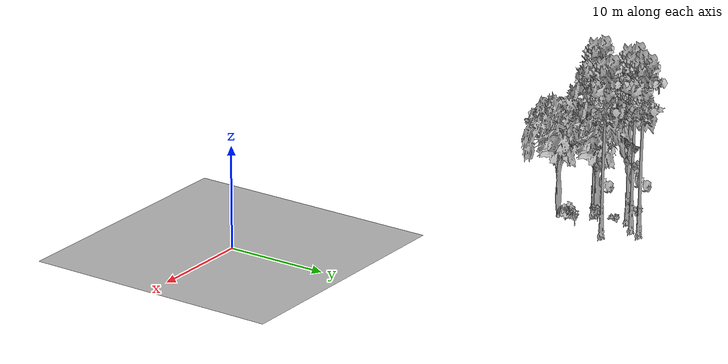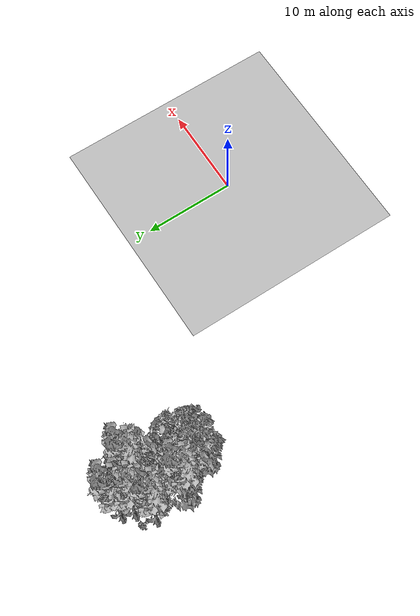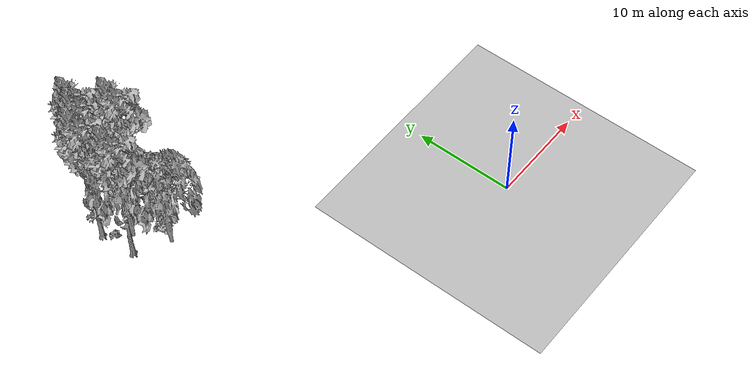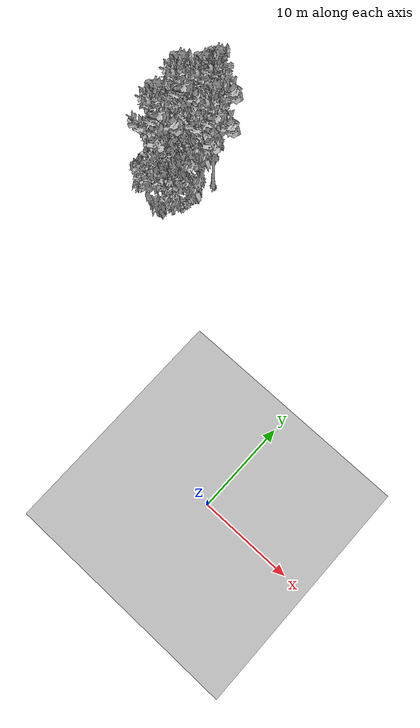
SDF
<sdf version="1.7">
 <world name="default">
  <model name="ground_plane">
   <static>1</static>
   <link name="link">
    <collision name="collision">
     <pose>-50 0 0 0 -0 0</pose>
     <geometry><plane><normal>0 0 1</normal><size>80 80</size></plane></geometry>
     <surface><contact><ode><min_depth>0.01</min_depth><max_vel>0</max_vel></ode></contact></surface>
    </collision>
    <visual name="grass">
     <cast_shadows>0</cast_shadows>
     <geometry>
      <mesh>
       <scale>0.46714285714285714 0.46714285714285714 0.1</scale>
       <uri>file://grass_plane/meshes/grass_plane.dae</uri>
      </mesh>
     </geometry>
    </visual>
   </link>
  </model>
  <model name="Tree 76">
   <static>1</static>
   <pose>-25.28475327247445 27.292416141790056 0 1.57079 -0 0</pose>
   <link name="link">
    <collision name="collision">
     <geometry><mesh><scale>3.5 5 3.5</scale><uri>model://tree_9/meshes/tree_9.obj</uri></mesh></geometry>
    </collision>
    <visual name="visual">
     <geometry><mesh><scale>3.5 5 3.5</scale><uri>model://tree_9/meshes/tree_9.obj</uri></mesh></geometry>
    </visual>
   </link>
  </model>
  <model name="Tree 187">
   <static>1</static>
   <pose>-23.664210870170336 20.35513153780377 0 1.57079 -0 0</pose>
   <link name="link">
    <collision name="collision">
     <geometry><mesh><scale>3.5 5 3.5</scale><uri>model://tree_2/meshes/tree_2.obj</uri></mesh></geometry>
    </collision>
    <visual name="visual">
     <geometry><mesh><scale>3.5 5 3.5</scale><uri>model://tree_2/meshes/tree_2.obj</uri></mesh></geometry>
    </visual>
   </link>
  </model>
  <model name="Tree 233">
   <static>1</static>
   <pose>-26.557965299900605 22.367686665707993 0 1.57079 -0 0</pose>
   <link name="link">
    <collision name="collision">
     <geometry><mesh><scale>3.5 5 3.5</scale><uri>model://tree_9/meshes/tree_9.obj</uri></mesh></geometry>
    </collision>
    <visual name="visual">
     <geometry><mesh><scale>3.5 5 3.5</scale><uri>model://tree_9/meshes/tree_9.obj</uri></mesh></geometry>
    </visual>
   </link>
  </model>
  <model name="Tree 272">
   <static>1</static>
   <pose>-25.3260485998933 23.535417205980586 0 1.57079 -0 0</pose>
   <link name="link">
    <collision name="collision">
     <geometry><mesh><scale>3.5 5 3.5</scale><uri>model://tree_2/meshes/tree_2.obj</uri></mesh></geometry>
    </collision>
    <visual name="visual">
     <geometry><mesh><scale>3.5 5 3.5</scale><uri>model://tree_2/meshes/tree_2.obj</uri></mesh></geometry>
    </visual>
   </link>
  </model>
  <model name="Tree 322">
   <static>1</static>
   <pose>-22.619899723222204 25.71858465556508 0 1.57079 -0 0</pose>
   <link name="link">
    <collision name="collision">
     <geometry><mesh><scale>3.5 5 3.5</scale><uri>model://tree_9/meshes/tree_9.obj</uri></mesh></geometry>
    </collision>
    <visual name="visual">
     <geometry><mesh><scale>3.5 5 3.5</scale><uri>model://tree_9/meshes/tree_9.obj</uri></mesh></geometry>
    </visual>
   </link>
  </model>
  <model name="Tree 340">
   <static>1</static>
   <pose>-24.75414996001833 28.4813589522999 0 1.57079 -0 0</pose>
   <link name="link">
    <collision name="collision">
     <geometry><mesh><scale>3.5 5 3.5</scale><uri>model://tree_9/meshes/tree_9.obj</uri></mesh></geometry>
    </collision>
    <visual name="visual">
     <geometry><mesh><scale>3.5 5 3.5</scale><uri>model://tree_9/meshes/tree_9.obj</uri></mesh></geometry>
    </visual>
   </link>
  </model>
  <model name="Tree 397">
   <static>1</static>
   <pose>-26.88771390621566 25.876480147142047 0 1.57079 -0 0</pose>
   <link name="link">
    <collision name="collision">
     <geometry><mesh><scale>3.5 5 3.5</scale><uri>model://tree_9/meshes/tree_9.obj</uri></mesh></geometry>
    </collision>
    <visual name="visual">
     <geometry><mesh><scale>3.5 5 3.5</scale><uri>model://tree_9/meshes/tree_9.obj</uri></mesh></geometry>
    </visual>
   </link>
  </model>
  <model name="Bush 21">
   <static>1</static>
   <pose>-23.268155396020305 21.367139549733388 0 1.57079 -0 0</pose>
   <link name="link">
    <collision name="collision">
     <geometry><mesh><scale>2 2 2</scale><uri>model://bush_1/meshes/bush_1.obj</uri></mesh></geometry>
     <surface><contact><collide_without_contact>false</collide_without_contact></contact></surface>
    </collision>
    <visual name="visual">
     <geometry><mesh><scale>2 2 2</scale><uri>model://bush_1/meshes/bush_1.obj</uri></mesh></geometry>
    </visual>
   </link>
  </model>
  <model name="Bush 287">
   <static>1</static>
   <pose>-26.333663153195484 24.795123970812142 0 1.57079 -0 0</pose>
   <link name="link">
    <collision name="collision">
     <geometry><mesh><scale>2 2 2</scale><uri>model://bush_2/meshes/bush_2.obj</uri></mesh></geometry>
     <surface><contact><collide_without_contact>false</collide_without_contact></contact></surface>
    </collision>
    <visual name="visual">
     <geometry><mesh><scale>2 2 2</scale><uri>model://bush_2/meshes/bush_2.obj</uri></mesh></geometry>
    </visual>
   </link>
  </model>
  <model name="Bush 403">
   <static>1</static>
   <pose>-22.549126431494525 22.855167008699368 0 1.57079 -0 0</pose>
   <link name="link">
    <collision name="collision">
     <geometry><mesh><scale>2 2 2</scale><uri>model://bush_5/meshes/bush_5.obj</uri></mesh></geometry>
     <surface><contact><collide_without_contact>false</collide_without_contact></contact></surface>
    </collision>
    <visual name="visual">
     <geometry><mesh><scale>2 2 2</scale><uri>model://bush_5/meshes/bush_5.obj</uri></mesh></geometry>
    </visual>
   </link>
  </model>
  <model name="Bush 540">
   <static>1</static>
   <pose>-26.562890050178105 27.33517630449191 0 1.57079 -0 0</pose>
   <link name="link">
    <collision name="collision">
     <geometry><mesh><scale>2 2 2</scale><uri>model://bush_5/meshes/bush_5.obj</uri></mesh></geometry>
     <surface><contact><collide_without_contact>false</collide_without_contact></contact></surface>
    </collision>
    <visual name="visual">
     <geometry><mesh><scale>2 2 2</scale><uri>model://bush_5/meshes/bush_5.obj</uri></mesh></geometry>
    </visual>
   </link>
  </model>
  <model name="Bush 596">
   <static>1</static>
   <pose>-24.696269436402147 24.00423526536582 0 1.57079 -0 0</pose>
   <link name="link">
    <collision name="collision">
     <geometry><mesh><scale>2 2 2</scale><uri>model://bush_5/meshes/bush_5.obj</uri></mesh></geometry>
     <surface><contact><collide_without_contact>false</collide_without_contact></contact></surface>
    </collision>
    <visual name="visual">
     <geometry><mesh><scale>2 2 2</scale><uri>model://bush_5/meshes/bush_5.obj</uri></mesh></geometry>
    </visual>
   </link>
  </model>
 </world>
</sdf>
